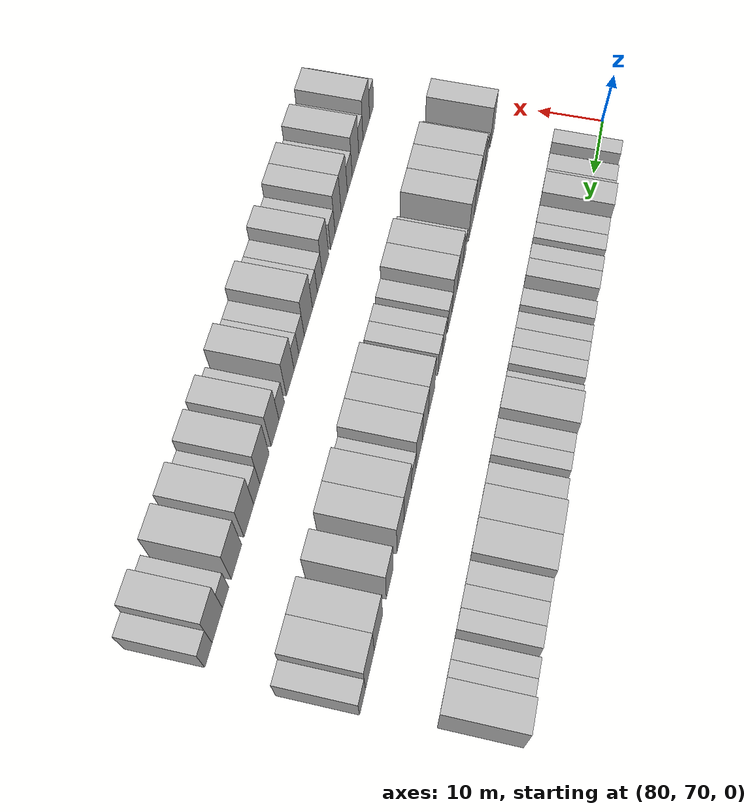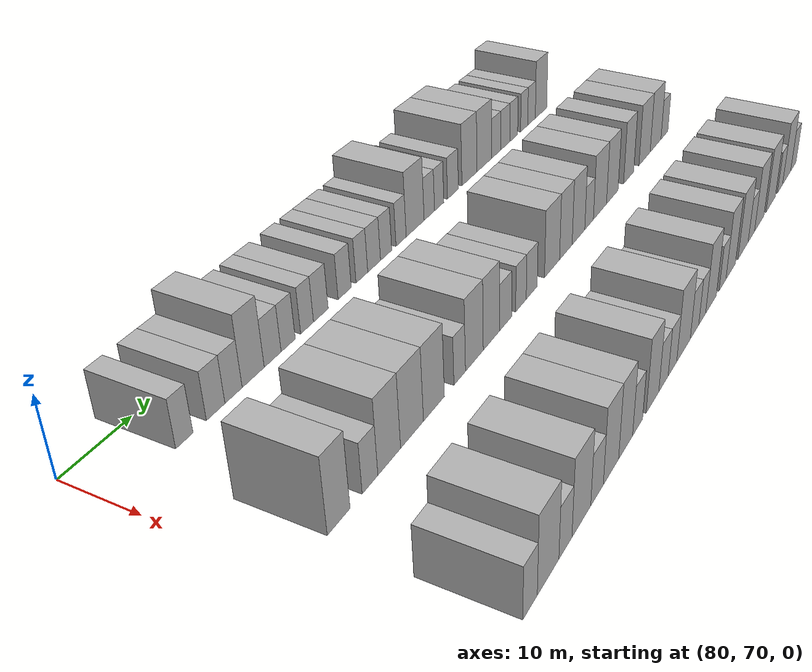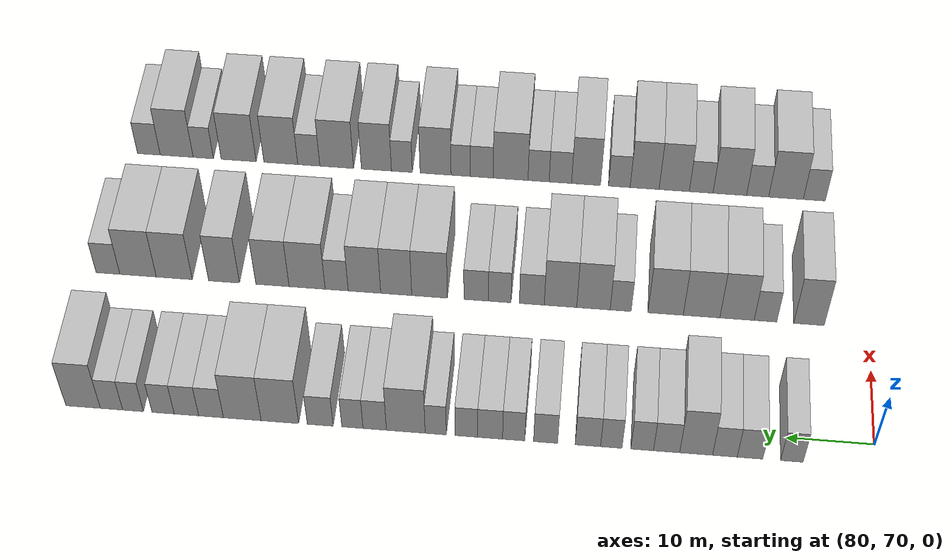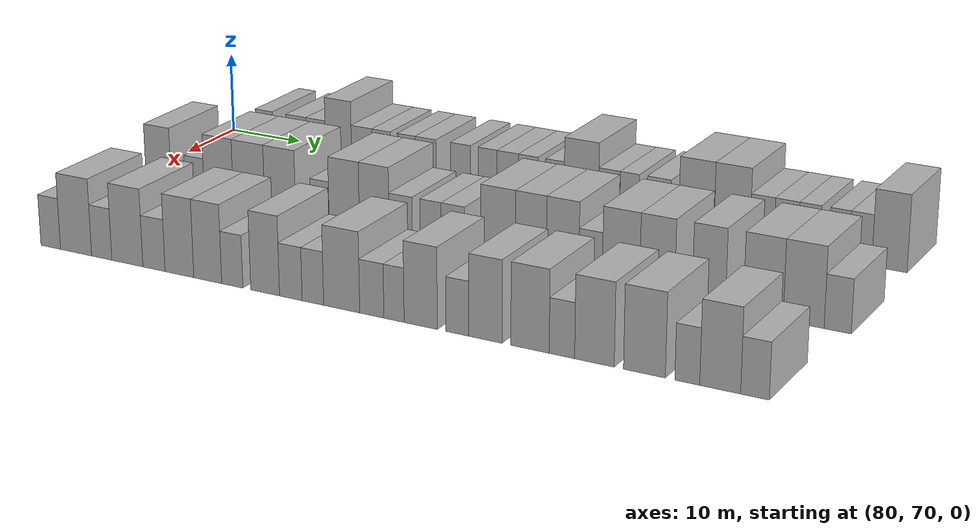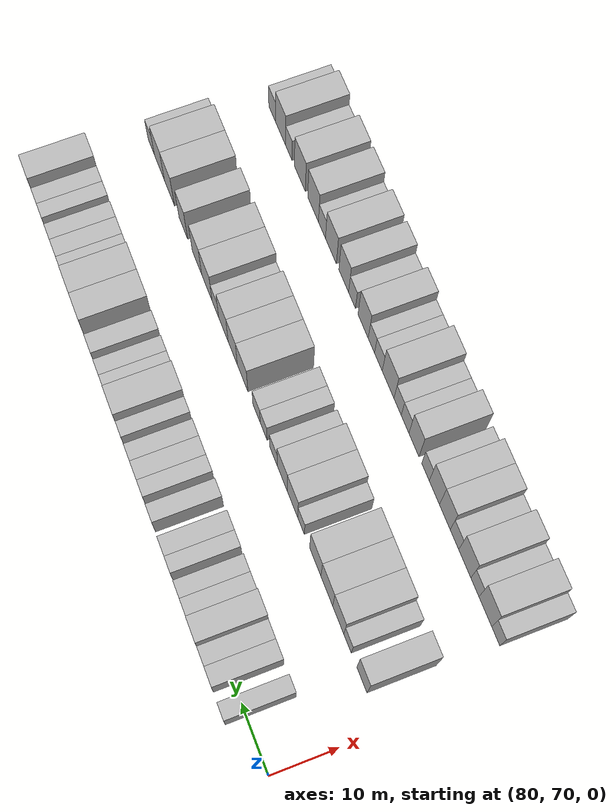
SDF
<sdf version="1.6">
 <world name="default">
  <model name="building_630">
   <static>1</static>
   <pose>82.0000 79.3968 0 0.000000 0.000000 0.000000</pose>
   <link name="link">
    <pose>0 0 3.00 0 0 0</pose>
    <collision name="collision"><geometry><box><size>10.0000 2.5306 6.0000</size></box></geometry></collision>
    <visual name="visual">
     <cast_shadows>0</cast_shadows>
     <geometry><box><size>10.0000 2.5306 6.0000</size></box></geometry>
     <material>
      <script>
       <uri>model://HANNAS_wall/materials/scripts</uri>
       <uri>model://HANNAS_wall/materials/textures</uri>
       <name>vrc/HANNAS_wall</name>
      </script>
     </material>
    </visual>
   </link>
  </model>
  <model name="building_631">
   <static>1</static>
   <pose>82.0000 84.1034 0 0.000000 0.000000 0.000000</pose>
   <link name="link">
    <pose>0 0 3.00 0 0 0</pose>
    <collision name="collision"><geometry><box><size>10.0000 2.8827 6.0000</size></box></geometry></collision>
    <visual name="visual">
     <cast_shadows>0</cast_shadows>
     <geometry><box><size>10.0000 2.8827 6.0000</size></box></geometry>
     <material>
      <script>
       <uri>model://HANNAS_wall/materials/scripts</uri>
       <uri>model://HANNAS_wall/materials/textures</uri>
       <name>vrc/HANNAS_wall</name>
      </script>
     </material>
    </visual>
   </link>
  </model>
  <model name="building_632">
   <static>1</static>
   <pose>82.0000 86.9345 0 0.000000 0.000000 0.000000</pose>
   <link name="link">
    <pose>0 0 3.00 0 0 0</pose>
    <collision name="collision"><geometry><box><size>10.0000 2.7796 6.0000</size></box></geometry></collision>
    <visual name="visual">
     <cast_shadows>0</cast_shadows>
     <geometry><box><size>10.0000 2.7796 6.0000</size></box></geometry>
     <material>
      <script>
       <uri>model://HANNAS_wall/materials/scripts</uri>
       <uri>model://HANNAS_wall/materials/textures</uri>
       <name>vrc/HANNAS_wall</name>
      </script>
     </material>
    </visual>
   </link>
  </model>
  <model name="building_633">
   <static>1</static>
   <pose>82.0000 90.1818 0 0.000000 0.000000 0.000000</pose>
   <link name="link">
    <pose>0 0 4.50 0 0 0</pose>
    <collision name="collision"><geometry><box><size>10.0000 3.7149 9.0000</size></box></geometry></collision>
    <visual name="visual">
     <cast_shadows>0</cast_shadows>
     <geometry><box><size>10.0000 3.7149 9.0000</size></box></geometry>
     <material>
      <script>
       <uri>model://HANNAS_wall/materials/scripts</uri>
       <uri>model://HANNAS_wall/materials/textures</uri>
       <name>vrc/HANNAS_wall</name>
      </script>
     </material>
    </visual>
   </link>
  </model>
  <model name="building_634">
   <static>1</static>
   <pose>82.0000 93.5199 0 0.000000 0.000000 0.000000</pose>
   <link name="link">
    <pose>0 0 3.00 0 0 0</pose>
    <collision name="collision"><geometry><box><size>10.0000 2.9614 6.0000</size></box></geometry></collision>
    <visual name="visual">
     <cast_shadows>0</cast_shadows>
     <geometry><box><size>10.0000 2.9614 6.0000</size></box></geometry>
     <material>
      <script>
       <uri>model://HANNAS_wall/materials/scripts</uri>
       <uri>model://HANNAS_wall/materials/textures</uri>
       <name>vrc/HANNAS_wall</name>
      </script>
     </material>
    </visual>
   </link>
  </model>
  <model name="building_635">
   <static>1</static>
   <pose>82.0000 96.2858 0 0.000000 0.000000 0.000000</pose>
   <link name="link">
    <pose>0 0 3.00 0 0 0</pose>
    <collision name="collision"><geometry><box><size>10.0000 2.5704 6.0000</size></box></geometry></collision>
    <visual name="visual">
     <cast_shadows>0</cast_shadows>
     <geometry><box><size>10.0000 2.5704 6.0000</size></box></geometry>
     <material>
      <script>
       <uri>model://HANNAS_wall/materials/scripts</uri>
       <uri>model://HANNAS_wall/materials/textures</uri>
       <name>vrc/HANNAS_wall</name>
      </script>
     </material>
    </visual>
   </link>
  </model>
  <model name="building_636">
   <static>1</static>
   <pose>82.0000 99.7910 0 0.000000 0.000000 0.000000</pose>
   <link name="link">
    <pose>0 0 3.00 0 0 0</pose>
    <collision name="collision"><geometry><box><size>10.0000 2.4400 6.0000</size></box></geometry></collision>
    <visual name="visual">
     <cast_shadows>0</cast_shadows>
     <geometry><box><size>10.0000 2.4400 6.0000</size></box></geometry>
     <material>
      <script>
       <uri>model://HANNAS_wall/materials/scripts</uri>
       <uri>model://HANNAS_wall/materials/textures</uri>
       <name>vrc/HANNAS_wall</name>
      </script>
     </material>
    </visual>
   </link>
  </model>
  <model name="building_637">
   <static>1</static>
   <pose>82.0000 102.4497 0 0.000000 0.000000 0.000000</pose>
   <link name="link">
    <pose>0 0 3.00 0 0 0</pose>
    <collision name="collision"><geometry><box><size>10.0000 2.8775 6.0000</size></box></geometry></collision>
    <visual name="visual">
     <cast_shadows>0</cast_shadows>
     <geometry><box><size>10.0000 2.8775 6.0000</size></box></geometry>
     <material>
      <script>
       <uri>model://HANNAS_wall/materials/scripts</uri>
       <uri>model://HANNAS_wall/materials/textures</uri>
       <name>vrc/HANNAS_wall</name>
      </script>
     </material>
    </visual>
   </link>
  </model>
  <model name="building_638">
   <static>1</static>
   <pose>82.0000 107.2564 0 0.000000 0.000000 0.000000</pose>
   <link name="link">
    <pose>0 0 3.00 0 0 0</pose>
    <collision name="collision"><geometry><box><size>10.0000 2.7361 6.0000</size></box></geometry></collision>
    <visual name="visual">
     <cast_shadows>0</cast_shadows>
     <geometry><box><size>10.0000 2.7361 6.0000</size></box></geometry>
     <material>
      <script>
       <uri>model://HANNAS_wall/materials/scripts</uri>
       <uri>model://HANNAS_wall/materials/textures</uri>
       <name>vrc/HANNAS_wall</name>
      </script>
     </material>
    </visual>
   </link>
  </model>
  <model name="building_639">
   <static>1</static>
   <pose>82.0000 110.8932 0 0.000000 0.000000 0.000000</pose>
   <link name="link">
    <pose>0 0 3.00 0 0 0</pose>
    <collision name="collision"><geometry><box><size>10.0000 2.5376 6.0000</size></box></geometry></collision>
    <visual name="visual">
     <cast_shadows>0</cast_shadows>
     <geometry><box><size>10.0000 2.5376 6.0000</size></box></geometry>
     <material>
      <script>
       <uri>model://HANNAS_wall/materials/scripts</uri>
       <uri>model://HANNAS_wall/materials/textures</uri>
       <name>vrc/HANNAS_wall</name>
      </script>
     </material>
    </visual>
   </link>
  </model>
  <model name="building_640">
   <static>1</static>
   <pose>82.0000 113.5886 0 0.000000 0.000000 0.000000</pose>
   <link name="link">
    <pose>0 0 3.00 0 0 0</pose>
    <collision name="collision"><geometry><box><size>10.0000 2.8531 6.0000</size></box></geometry></collision>
    <visual name="visual">
     <cast_shadows>0</cast_shadows>
     <geometry><box><size>10.0000 2.8531 6.0000</size></box></geometry>
     <material>
      <script>
       <uri>model://HANNAS_wall/materials/scripts</uri>
       <uri>model://HANNAS_wall/materials/textures</uri>
       <name>vrc/HANNAS_wall</name>
      </script>
     </material>
    </visual>
   </link>
  </model>
  <model name="building_641">
   <static>1</static>
   <pose>82.0000 116.3040 0 0.000000 0.000000 0.000000</pose>
   <link name="link">
    <pose>0 0 3.00 0 0 0</pose>
    <collision name="collision"><geometry><box><size>10.0000 2.5777 6.0000</size></box></geometry></collision>
    <visual name="visual">
     <cast_shadows>0</cast_shadows>
     <geometry><box><size>10.0000 2.5777 6.0000</size></box></geometry>
     <material>
      <script>
       <uri>model://HANNAS_wall/materials/scripts</uri>
       <uri>model://HANNAS_wall/materials/textures</uri>
       <name>vrc/HANNAS_wall</name>
      </script>
     </material>
    </visual>
   </link>
  </model>
  <model name="building_642">
   <static>1</static>
   <pose>82.0000 119.8088 0 0.000000 0.000000 0.000000</pose>
   <link name="link">
    <pose>0 0 3.00 0 0 0</pose>
    <collision name="collision"><geometry><box><size>10.0000 2.4319 6.0000</size></box></geometry></collision>
    <visual name="visual">
     <cast_shadows>0</cast_shadows>
     <geometry><box><size>10.0000 2.4319 6.0000</size></box></geometry>
     <material>
      <script>
       <uri>model://HANNAS_wall/materials/scripts</uri>
       <uri>model://HANNAS_wall/materials/textures</uri>
       <name>vrc/HANNAS_wall</name>
      </script>
     </material>
    </visual>
   </link>
  </model>
  <model name="building_643">
   <static>1</static>
   <pose>82.0000 123.2488 0 0.000000 0.000000 0.000000</pose>
   <link name="link">
    <pose>0 0 4.50 0 0 0</pose>
    <collision name="collision"><geometry><box><size>10.0000 4.4482 9.0000</size></box></geometry></collision>
    <visual name="visual">
     <cast_shadows>0</cast_shadows>
     <geometry><box><size>10.0000 4.4482 9.0000</size></box></geometry>
     <material>
      <script>
       <uri>model://HANNAS_wall/materials/scripts</uri>
       <uri>model://HANNAS_wall/materials/textures</uri>
       <name>vrc/HANNAS_wall</name>
      </script>
     </material>
    </visual>
   </link>
  </model>
  <model name="building_644">
   <static>1</static>
   <pose>82.0000 126.8173 0 0.000000 0.000000 0.000000</pose>
   <link name="link">
    <pose>0 0 3.00 0 0 0</pose>
    <collision name="collision"><geometry><box><size>10.0000 2.6888 6.0000</size></box></geometry></collision>
    <visual name="visual">
     <cast_shadows>0</cast_shadows>
     <geometry><box><size>10.0000 2.6888 6.0000</size></box></geometry>
     <material>
      <script>
       <uri>model://HANNAS_wall/materials/scripts</uri>
       <uri>model://HANNAS_wall/materials/textures</uri>
       <name>vrc/HANNAS_wall</name>
      </script>
     </material>
    </visual>
   </link>
  </model>
  <model name="building_645">
   <static>1</static>
   <pose>82.0000 129.3812 0 0.000000 0.000000 0.000000</pose>
   <link name="link">
    <pose>0 0 3.00 0 0 0</pose>
    <collision name="collision"><geometry><box><size>10.0000 2.4391 6.0000</size></box></geometry></collision>
    <visual name="visual">
     <cast_shadows>0</cast_shadows>
     <geometry><box><size>10.0000 2.4391 6.0000</size></box></geometry>
     <material>
      <script>
       <uri>model://HANNAS_wall/materials/scripts</uri>
       <uri>model://HANNAS_wall/materials/textures</uri>
       <name>vrc/HANNAS_wall</name>
      </script>
     </material>
    </visual>
   </link>
  </model>
  <model name="building_646">
   <static>1</static>
   <pose>82.0000 133.0914 0 0.000000 0.000000 0.000000</pose>
   <link name="link">
    <pose>0 0 3.00 0 0 0</pose>
    <collision name="collision"><geometry><box><size>10.0000 2.9813 6.0000</size></box></geometry></collision>
    <visual name="visual">
     <cast_shadows>0</cast_shadows>
     <geometry><box><size>10.0000 2.9813 6.0000</size></box></geometry>
     <material>
      <script>
       <uri>model://HANNAS_wall/materials/scripts</uri>
       <uri>model://HANNAS_wall/materials/textures</uri>
       <name>vrc/HANNAS_wall</name>
      </script>
     </material>
    </visual>
   </link>
  </model>
  <model name="building_647">
   <static>1</static>
   <pose>82.0000 137.7548 0 0.000000 0.000000 0.000000</pose>
   <link name="link">
    <pose>0 0 4.50 0 0 0</pose>
    <collision name="collision"><geometry><box><size>10.0000 4.3455 9.0000</size></box></geometry></collision>
    <visual name="visual">
     <cast_shadows>0</cast_shadows>
     <geometry><box><size>10.0000 4.3455 9.0000</size></box></geometry>
     <material>
      <script>
       <uri>model://HANNAS_wall/materials/scripts</uri>
       <uri>model://HANNAS_wall/materials/textures</uri>
       <name>vrc/HANNAS_wall</name>
      </script>
     </material>
    </visual>
   </link>
  </model>
  <model name="building_648">
   <static>1</static>
   <pose>82.0000 142.1123 0 0.000000 0.000000 0.000000</pose>
   <link name="link">
    <pose>0 0 4.50 0 0 0</pose>
    <collision name="collision"><geometry><box><size>10.0000 4.3694 9.0000</size></box></geometry></collision>
    <visual name="visual">
     <cast_shadows>0</cast_shadows>
     <geometry><box><size>10.0000 4.3694 9.0000</size></box></geometry>
     <material>
      <script>
       <uri>model://HANNAS_wall/materials/scripts</uri>
       <uri>model://HANNAS_wall/materials/textures</uri>
       <name>vrc/HANNAS_wall</name>
      </script>
     </material>
    </visual>
   </link>
  </model>
  <model name="building_649">
   <static>1</static>
   <pose>82.0000 145.7367 0 0.000000 0.000000 0.000000</pose>
   <link name="link">
    <pose>0 0 3.00 0 0 0</pose>
    <collision name="collision"><geometry><box><size>10.0000 2.8795 6.0000</size></box></geometry></collision>
    <visual name="visual">
     <cast_shadows>0</cast_shadows>
     <geometry><box><size>10.0000 2.8795 6.0000</size></box></geometry>
     <material>
      <script>
       <uri>model://HANNAS_wall/materials/scripts</uri>
       <uri>model://HANNAS_wall/materials/textures</uri>
       <name>vrc/HANNAS_wall</name>
      </script>
     </material>
    </visual>
   </link>
  </model>
  <model name="building_650">
   <static>1</static>
   <pose>82.0000 148.6009 0 0.000000 0.000000 0.000000</pose>
   <link name="link">
    <pose>0 0 3.00 0 0 0</pose>
    <collision name="collision"><geometry><box><size>10.0000 2.8488 6.0000</size></box></geometry></collision>
    <visual name="visual">
     <cast_shadows>0</cast_shadows>
     <geometry><box><size>10.0000 2.8488 6.0000</size></box></geometry>
     <material>
      <script>
       <uri>model://HANNAS_wall/materials/scripts</uri>
       <uri>model://HANNAS_wall/materials/textures</uri>
       <name>vrc/HANNAS_wall</name>
      </script>
     </material>
    </visual>
   </link>
  </model>
  <model name="building_651">
   <static>1</static>
   <pose>82.0000 151.3153 0 0.000000 0.000000 0.000000</pose>
   <link name="link">
    <pose>0 0 3.00 0 0 0</pose>
    <collision name="collision"><geometry><box><size>10.0000 2.5799 6.0000</size></box></geometry></collision>
    <visual name="visual">
     <cast_shadows>0</cast_shadows>
     <geometry><box><size>10.0000 2.5799 6.0000</size></box></geometry>
     <material>
      <script>
       <uri>model://HANNAS_wall/materials/scripts</uri>
       <uri>model://HANNAS_wall/materials/textures</uri>
       <name>vrc/HANNAS_wall</name>
      </script>
     </material>
    </visual>
   </link>
  </model>
  <model name="building_652">
   <static>1</static>
   <pose>82.0000 154.8153 0 0.000000 0.000000 0.000000</pose>
   <link name="link">
    <pose>0 0 3.00 0 0 0</pose>
    <collision name="collision"><geometry><box><size>10.0000 2.4201 6.0000</size></box></geometry></collision>
    <visual name="visual">
     <cast_shadows>0</cast_shadows>
     <geometry><box><size>10.0000 2.4201 6.0000</size></box></geometry>
     <material>
      <script>
       <uri>model://HANNAS_wall/materials/scripts</uri>
       <uri>model://HANNAS_wall/materials/textures</uri>
       <name>vrc/HANNAS_wall</name>
      </script>
     </material>
    </visual>
   </link>
  </model>
  <model name="building_653">
   <static>1</static>
   <pose>82.0000 157.3307 0 0.000000 0.000000 0.000000</pose>
   <link name="link">
    <pose>0 0 3.00 0 0 0</pose>
    <collision name="collision"><geometry><box><size>10.0000 2.6108 6.0000</size></box></geometry></collision>
    <visual name="visual">
     <cast_shadows>0</cast_shadows>
     <geometry><box><size>10.0000 2.6108 6.0000</size></box></geometry>
     <material>
      <script>
       <uri>model://HANNAS_wall/materials/scripts</uri>
       <uri>model://HANNAS_wall/materials/textures</uri>
       <name>vrc/HANNAS_wall</name>
      </script>
     </material>
    </visual>
   </link>
  </model>
  <model name="building_654">
   <static>1</static>
   <pose>82.0000 160.6524 0 0.000000 0.000000 0.000000</pose>
   <link name="link">
    <pose>0 0 4.50 0 0 0</pose>
    <collision name="collision"><geometry><box><size>10.0000 4.0326 9.0000</size></box></geometry></collision>
    <visual name="visual">
     <cast_shadows>0</cast_shadows>
     <geometry><box><size>10.0000 4.0326 9.0000</size></box></geometry>
     <material>
      <script>
       <uri>model://HANNAS_wall/materials/scripts</uri>
       <uri>model://HANNAS_wall/materials/textures</uri>
       <name>vrc/HANNAS_wall</name>
      </script>
     </material>
    </visual>
   </link>
  </model>
  <model name="building_802">
   <static>1</static>
   <pose>101.0000 77.0672 0 0.000000 0.000000 0.000000</pose>
   <link name="link">
    <pose>0 0 4.50 0 0 0</pose>
    <collision name="collision"><geometry><box><size>10.0000 3.6210 9.0000</size></box></geometry></collision>
    <visual name="visual">
     <cast_shadows>0</cast_shadows>
     <geometry><box><size>10.0000 3.6210 9.0000</size></box></geometry>
     <material>
      <script>
       <uri>model://HANNAS_wall/materials/scripts</uri>
       <uri>model://HANNAS_wall/materials/textures</uri>
       <name>vrc/HANNAS_wall</name>
      </script>
     </material>
    </visual>
   </link>
  </model>
  <model name="building_803">
   <static>1</static>
   <pose>101.0000 82.2175 0 0.000000 0.000000 0.000000</pose>
   <link name="link">
    <pose>0 0 3.00 0 0 0</pose>
    <collision name="collision"><geometry><box><size>10.0000 2.6798 6.0000</size></box></geometry></collision>
    <visual name="visual">
     <cast_shadows>0</cast_shadows>
     <geometry><box><size>10.0000 2.6798 6.0000</size></box></geometry>
     <material>
      <script>
       <uri>model://HANNAS_wall/materials/scripts</uri>
       <uri>model://HANNAS_wall/materials/textures</uri>
       <name>vrc/HANNAS_wall</name>
      </script>
     </material>
    </visual>
   </link>
  </model>
  <model name="building_804">
   <static>1</static>
   <pose>101.0000 85.5962 0 0.000000 0.000000 0.000000</pose>
   <link name="link">
    <pose>0 0 4.50 0 0 0</pose>
    <collision name="collision"><geometry><box><size>10.0000 4.0775 9.0000</size></box></geometry></collision>
    <visual name="visual">
     <cast_shadows>0</cast_shadows>
     <geometry><box><size>10.0000 4.0775 9.0000</size></box></geometry>
     <material>
      <script>
       <uri>model://HANNAS_wall/materials/scripts</uri>
       <uri>model://HANNAS_wall/materials/textures</uri>
       <name>vrc/HANNAS_wall</name>
      </script>
     </material>
    </visual>
   </link>
  </model>
  <model name="building_805">
   <static>1</static>
   <pose>101.0000 89.8144 0 0.000000 0.000000 0.000000</pose>
   <link name="link">
    <pose>0 0 4.50 0 0 0</pose>
    <collision name="collision"><geometry><box><size>10.0000 4.3589 9.0000</size></box></geometry></collision>
    <visual name="visual">
     <cast_shadows>0</cast_shadows>
     <geometry><box><size>10.0000 4.3589 9.0000</size></box></geometry>
     <material>
      <script>
       <uri>model://HANNAS_wall/materials/scripts</uri>
       <uri>model://HANNAS_wall/materials/textures</uri>
       <name>vrc/HANNAS_wall</name>
      </script>
     </material>
    </visual>
   </link>
  </model>
  <model name="building_806">
   <static>1</static>
   <pose>101.0000 94.1086 0 0.000000 0.000000 0.000000</pose>
   <link name="link">
    <pose>0 0 4.50 0 0 0</pose>
    <collision name="collision"><geometry><box><size>10.0000 4.2296 9.0000</size></box></geometry></collision>
    <visual name="visual">
     <cast_shadows>0</cast_shadows>
     <geometry><box><size>10.0000 4.2296 9.0000</size></box></geometry>
     <material>
      <script>
       <uri>model://HANNAS_wall/materials/scripts</uri>
       <uri>model://HANNAS_wall/materials/textures</uri>
       <name>vrc/HANNAS_wall</name>
      </script>
     </material>
    </visual>
   </link>
  </model>
  <model name="building_807">
   <static>1</static>
   <pose>101.0000 99.4759 0 0.000000 0.000000 0.000000</pose>
   <link name="link">
    <pose>0 0 3.00 0 0 0</pose>
    <collision name="collision"><geometry><box><size>10.0000 2.5050 6.0000</size></box></geometry></collision>
    <visual name="visual">
     <cast_shadows>0</cast_shadows>
     <geometry><box><size>10.0000 2.5050 6.0000</size></box></geometry>
     <material>
      <script>
       <uri>model://HANNAS_wall/materials/scripts</uri>
       <uri>model://HANNAS_wall/materials/textures</uri>
       <name>vrc/HANNAS_wall</name>
      </script>
     </material>
    </visual>
   </link>
  </model>
  <model name="building_808">
   <static>1</static>
   <pose>101.0000 102.7372 0 0.000000 0.000000 0.000000</pose>
   <link name="link">
    <pose>0 0 4.50 0 0 0</pose>
    <collision name="collision"><geometry><box><size>10.0000 4.0176 9.0000</size></box></geometry></collision>
    <visual name="visual">
     <cast_shadows>0</cast_shadows>
     <geometry><box><size>10.0000 4.0176 9.0000</size></box></geometry>
     <material>
      <script>
       <uri>model://HANNAS_wall/materials/scripts</uri>
       <uri>model://HANNAS_wall/materials/textures</uri>
       <name>vrc/HANNAS_wall</name>
      </script>
     </material>
    </visual>
   </link>
  </model>
  <model name="building_809">
   <static>1</static>
   <pose>101.0000 106.6956 0 0.000000 0.000000 0.000000</pose>
   <link name="link">
    <pose>0 0 4.50 0 0 0</pose>
    <collision name="collision"><geometry><box><size>10.0000 3.8991 9.0000</size></box></geometry></collision>
    <visual name="visual">
     <cast_shadows>0</cast_shadows>
     <geometry><box><size>10.0000 3.8991 9.0000</size></box></geometry>
     <material>
      <script>
       <uri>model://HANNAS_wall/materials/scripts</uri>
       <uri>model://HANNAS_wall/materials/textures</uri>
       <name>vrc/HANNAS_wall</name>
      </script>
     </material>
    </visual>
   </link>
  </model>
  <model name="building_810">
   <static>1</static>
   <pose>101.0000 110.1404 0 0.000000 0.000000 0.000000</pose>
   <link name="link">
    <pose>0 0 3.00 0 0 0</pose>
    <collision name="collision"><geometry><box><size>10.0000 2.9905 6.0000</size></box></geometry></collision>
    <visual name="visual">
     <cast_shadows>0</cast_shadows>
     <geometry><box><size>10.0000 2.9905 6.0000</size></box></geometry>
     <material>
      <script>
       <uri>model://HANNAS_wall/materials/scripts</uri>
       <uri>model://HANNAS_wall/materials/textures</uri>
       <name>vrc/HANNAS_wall</name>
      </script>
     </material>
    </visual>
   </link>
  </model>
  <model name="building_811">
   <static>1</static>
   <pose>101.0000 113.9992 0 0.000000 0.000000 0.000000</pose>
   <link name="link">
    <pose>0 0 3.00 0 0 0</pose>
    <collision name="collision"><geometry><box><size>10.0000 2.7270 6.0000</size></box></geometry></collision>
    <visual name="visual">
     <cast_shadows>0</cast_shadows>
     <geometry><box><size>10.0000 2.7270 6.0000</size></box></geometry>
     <material>
      <script>
       <uri>model://HANNAS_wall/materials/scripts</uri>
       <uri>model://HANNAS_wall/materials/textures</uri>
       <name>vrc/HANNAS_wall</name>
      </script>
     </material>
    </visual>
   </link>
  </model>
  <model name="building_812">
   <static>1</static>
   <pose>101.0000 116.8418 0 0.000000 0.000000 0.000000</pose>
   <link name="link">
    <pose>0 0 3.00 0 0 0</pose>
    <collision name="collision"><geometry><box><size>10.0000 2.9583 6.0000</size></box></geometry></collision>
    <visual name="visual">
     <cast_shadows>0</cast_shadows>
     <geometry><box><size>10.0000 2.9583 6.0000</size></box></geometry>
     <material>
      <script>
       <uri>model://HANNAS_wall/materials/scripts</uri>
       <uri>model://HANNAS_wall/materials/textures</uri>
       <name>vrc/HANNAS_wall</name>
      </script>
     </material>
    </visual>
   </link>
  </model>
  <model name="building_813">
   <static>1</static>
   <pose>101.0000 122.4758 0 0.000000 0.000000 0.000000</pose>
   <link name="link">
    <pose>0 0 4.50 0 0 0</pose>
    <collision name="collision"><geometry><box><size>10.0000 4.3097 9.0000</size></box></geometry></collision>
    <visual name="visual">
     <cast_shadows>0</cast_shadows>
     <geometry><box><size>10.0000 4.3097 9.0000</size></box></geometry>
     <material>
      <script>
       <uri>model://HANNAS_wall/materials/scripts</uri>
       <uri>model://HANNAS_wall/materials/textures</uri>
       <name>vrc/HANNAS_wall</name>
      </script>
     </material>
    </visual>
   </link>
  </model>
  <model name="building_814">
   <static>1</static>
   <pose>101.0000 126.5129 0 0.000000 0.000000 0.000000</pose>
   <link name="link">
    <pose>0 0 4.50 0 0 0</pose>
    <collision name="collision"><geometry><box><size>10.0000 3.7645 9.0000</size></box></geometry></collision>
    <visual name="visual">
     <cast_shadows>0</cast_shadows>
     <geometry><box><size>10.0000 3.7645 9.0000</size></box></geometry>
     <material>
      <script>
       <uri>model://HANNAS_wall/materials/scripts</uri>
       <uri>model://HANNAS_wall/materials/textures</uri>
       <name>vrc/HANNAS_wall</name>
      </script>
     </material>
    </visual>
   </link>
  </model>
  <model name="building_815">
   <static>1</static>
   <pose>101.0000 130.3658 0 0.000000 0.000000 0.000000</pose>
   <link name="link">
    <pose>0 0 4.50 0 0 0</pose>
    <collision name="collision"><geometry><box><size>10.0000 3.9412 9.0000</size></box></geometry></collision>
    <visual name="visual">
     <cast_shadows>0</cast_shadows>
     <geometry><box><size>10.0000 3.9412 9.0000</size></box></geometry>
     <material>
      <script>
       <uri>model://HANNAS_wall/materials/scripts</uri>
       <uri>model://HANNAS_wall/materials/textures</uri>
       <name>vrc/HANNAS_wall</name>
      </script>
     </material>
    </visual>
   </link>
  </model>
  <model name="building_816">
   <static>1</static>
   <pose>101.0000 133.7358 0 0.000000 0.000000 0.000000</pose>
   <link name="link">
    <pose>0 0 3.00 0 0 0</pose>
    <collision name="collision"><geometry><box><size>10.0000 2.7989 6.0000</size></box></geometry></collision>
    <visual name="visual">
     <cast_shadows>0</cast_shadows>
     <geometry><box><size>10.0000 2.7989 6.0000</size></box></geometry>
     <material>
      <script>
       <uri>model://HANNAS_wall/materials/scripts</uri>
       <uri>model://HANNAS_wall/materials/textures</uri>
       <name>vrc/HANNAS_wall</name>
      </script>
     </material>
    </visual>
   </link>
  </model>
  <model name="building_817">
   <static>1</static>
   <pose>101.0000 137.3330 0 0.000000 0.000000 0.000000</pose>
   <link name="link">
    <pose>0 0 4.50 0 0 0</pose>
    <collision name="collision"><geometry><box><size>10.0000 4.3954 9.0000</size></box></geometry></collision>
    <visual name="visual">
     <cast_shadows>0</cast_shadows>
     <geometry><box><size>10.0000 4.3954 9.0000</size></box></geometry>
     <material>
      <script>
       <uri>model://HANNAS_wall/materials/scripts</uri>
       <uri>model://HANNAS_wall/materials/textures</uri>
       <name>vrc/HANNAS_wall</name>
      </script>
     </material>
    </visual>
   </link>
  </model>
  <model name="building_818">
   <static>1</static>
   <pose>101.0000 141.5638 0 0.000000 0.000000 0.000000</pose>
   <link name="link">
    <pose>0 0 4.50 0 0 0</pose>
    <collision name="collision"><geometry><box><size>10.0000 4.0663 9.0000</size></box></geometry></collision>
    <visual name="visual">
     <cast_shadows>0</cast_shadows>
     <geometry><box><size>10.0000 4.0663 9.0000</size></box></geometry>
     <material>
      <script>
       <uri>model://HANNAS_wall/materials/scripts</uri>
       <uri>model://HANNAS_wall/materials/textures</uri>
       <name>vrc/HANNAS_wall</name>
      </script>
     </material>
    </visual>
   </link>
  </model>
  <model name="building_819">
   <static>1</static>
   <pose>101.0000 147.4891 0 0.000000 0.000000 0.000000</pose>
   <link name="link">
    <pose>0 0 4.50 0 0 0</pose>
    <collision name="collision"><geometry><box><size>10.0000 3.7843 9.0000</size></box></geometry></collision>
    <visual name="visual">
     <cast_shadows>0</cast_shadows>
     <geometry><box><size>10.0000 3.7843 9.0000</size></box></geometry>
     <material>
      <script>
       <uri>model://HANNAS_wall/materials/scripts</uri>
       <uri>model://HANNAS_wall/materials/textures</uri>
       <name>vrc/HANNAS_wall</name>
      </script>
     </material>
    </visual>
   </link>
  </model>
  <model name="building_820">
   <static>1</static>
   <pose>101.0000 153.5932 0 0.000000 0.000000 0.000000</pose>
   <link name="link">
    <pose>0 0 4.50 0 0 0</pose>
    <collision name="collision"><geometry><box><size>10.0000 4.4238 9.0000</size></box></geometry></collision>
    <visual name="visual">
     <cast_shadows>0</cast_shadows>
     <geometry><box><size>10.0000 4.4238 9.0000</size></box></geometry>
     <material>
      <script>
       <uri>model://HANNAS_wall/materials/scripts</uri>
       <uri>model://HANNAS_wall/materials/textures</uri>
       <name>vrc/HANNAS_wall</name>
      </script>
     </material>
    </visual>
   </link>
  </model>
  <model name="building_821">
   <static>1</static>
   <pose>101.0000 158.0451 0 0.000000 0.000000 0.000000</pose>
   <link name="link">
    <pose>0 0 4.50 0 0 0</pose>
    <collision name="collision"><geometry><box><size>10.0000 4.4801 9.0000</size></box></geometry></collision>
    <visual name="visual">
     <cast_shadows>0</cast_shadows>
     <geometry><box><size>10.0000 4.4801 9.0000</size></box></geometry>
     <material>
      <script>
       <uri>model://HANNAS_wall/materials/scripts</uri>
       <uri>model://HANNAS_wall/materials/textures</uri>
       <name>vrc/HANNAS_wall</name>
      </script>
     </material>
    </visual>
   </link>
  </model>
  <model name="building_822">
   <static>1</static>
   <pose>101.0000 161.7510 0 0.000000 0.000000 0.000000</pose>
   <link name="link">
    <pose>0 0 3.00 0 0 0</pose>
    <collision name="collision"><geometry><box><size>10.0000 2.9317 6.0000</size></box></geometry></collision>
    <visual name="visual">
     <cast_shadows>0</cast_shadows>
     <geometry><box><size>10.0000 2.9317 6.0000</size></box></geometry>
     <material>
      <script>
       <uri>model://HANNAS_wall/materials/scripts</uri>
       <uri>model://HANNAS_wall/materials/textures</uri>
       <name>vrc/HANNAS_wall</name>
      </script>
     </material>
    </visual>
   </link>
  </model>
  <model name="building_980">
   <static>1</static>
   <pose>120.0000 75.9798 0 0.000000 0.000000 0.000000</pose>
   <link name="link">
    <pose>0 0 3.00 0 0 0</pose>
    <collision name="collision"><geometry><box><size>10.0000 2.7419 6.0000</size></box></geometry></collision>
    <visual name="visual">
     <cast_shadows>0</cast_shadows>
     <geometry><box><size>10.0000 2.7419 6.0000</size></box></geometry>
     <material>
      <script>
       <uri>model://HANNAS_wall/materials/scripts</uri>
       <uri>model://HANNAS_wall/materials/textures</uri>
       <name>vrc/HANNAS_wall</name>
      </script>
     </material>
    </visual>
   </link>
  </model>
  <model name="building_981">
   <static>1</static>
   <pose>120.0000 79.5094 0 0.000000 0.000000 0.000000</pose>
   <link name="link">
    <pose>0 0 4.50 0 0 0</pose>
    <collision name="collision"><geometry><box><size>10.0000 4.3174 9.0000</size></box></geometry></collision>
    <visual name="visual">
     <cast_shadows>0</cast_shadows>
     <geometry><box><size>10.0000 4.3174 9.0000</size></box></geometry>
     <material>
      <script>
       <uri>model://HANNAS_wall/materials/scripts</uri>
       <uri>model://HANNAS_wall/materials/textures</uri>
       <name>vrc/HANNAS_wall</name>
      </script>
     </material>
    </visual>
   </link>
  </model>
  <model name="building_982">
   <static>1</static>
   <pose>120.0000 83.0531 0 0.000000 0.000000 0.000000</pose>
   <link name="link">
    <pose>0 0 3.00 0 0 0</pose>
    <collision name="collision"><geometry><box><size>10.0000 2.7700 6.0000</size></box></geometry></collision>
    <visual name="visual">
     <cast_shadows>0</cast_shadows>
     <geometry><box><size>10.0000 2.7700 6.0000</size></box></geometry>
     <material>
      <script>
       <uri>model://HANNAS_wall/materials/scripts</uri>
       <uri>model://HANNAS_wall/materials/textures</uri>
       <name>vrc/HANNAS_wall</name>
      </script>
     </material>
    </visual>
   </link>
  </model>
  <model name="building_983">
   <static>1</static>
   <pose>120.0000 86.5377 0 0.000000 0.000000 0.000000</pose>
   <link name="link">
    <pose>0 0 4.50 0 0 0</pose>
    <collision name="collision"><geometry><box><size>10.0000 4.1992 9.0000</size></box></geometry></collision>
    <visual name="visual">
     <cast_shadows>0</cast_shadows>
     <geometry><box><size>10.0000 4.1992 9.0000</size></box></geometry>
     <material>
      <script>
       <uri>model://HANNAS_wall/materials/scripts</uri>
       <uri>model://HANNAS_wall/materials/textures</uri>
       <name>vrc/HANNAS_wall</name>
      </script>
     </material>
    </visual>
   </link>
  </model>
  <model name="building_984">
   <static>1</static>
   <pose>120.0000 90.1219 0 0.000000 0.000000 0.000000</pose>
   <link name="link">
    <pose>0 0 3.00 0 0 0</pose>
    <collision name="collision"><geometry><box><size>10.0000 2.9691 6.0000</size></box></geometry></collision>
    <visual name="visual">
     <cast_shadows>0</cast_shadows>
     <geometry><box><size>10.0000 2.9691 6.0000</size></box></geometry>
     <material>
      <script>
       <uri>model://HANNAS_wall/materials/scripts</uri>
       <uri>model://HANNAS_wall/materials/textures</uri>
       <name>vrc/HANNAS_wall</name>
      </script>
     </material>
    </visual>
   </link>
  </model>
  <model name="building_985">
   <static>1</static>
   <pose>120.0000 93.5033 0 0.000000 0.000000 0.000000</pose>
   <link name="link">
    <pose>0 0 4.50 0 0 0</pose>
    <collision name="collision"><geometry><box><size>10.0000 3.7938 9.0000</size></box></geometry></collision>
    <visual name="visual">
     <cast_shadows>0</cast_shadows>
     <geometry><box><size>10.0000 3.7938 9.0000</size></box></geometry>
     <material>
      <script>
       <uri>model://HANNAS_wall/materials/scripts</uri>
       <uri>model://HANNAS_wall/materials/textures</uri>
       <name>vrc/HANNAS_wall</name>
      </script>
     </material>
    </visual>
   </link>
  </model>
  <model name="building_986">
   <static>1</static>
   <pose>120.0000 97.2198 0 0.000000 0.000000 0.000000</pose>
   <link name="link">
    <pose>0 0 4.50 0 0 0</pose>
    <collision name="collision"><geometry><box><size>10.0000 3.6392 9.0000</size></box></geometry></collision>
    <visual name="visual">
     <cast_shadows>0</cast_shadows>
     <geometry><box><size>10.0000 3.6392 9.0000</size></box></geometry>
     <material>
      <script>
       <uri>model://HANNAS_wall/materials/scripts</uri>
       <uri>model://HANNAS_wall/materials/textures</uri>
       <name>vrc/HANNAS_wall</name>
      </script>
     </material>
    </visual>
   </link>
  </model>
  <model name="building_987">
   <static>1</static>
   <pose>120.0000 100.4044 0 0.000000 0.000000 0.000000</pose>
   <link name="link">
    <pose>0 0 3.00 0 0 0</pose>
    <collision name="collision"><geometry><box><size>10.0000 2.7301 6.0000</size></box></geometry></collision>
    <visual name="visual">
     <cast_shadows>0</cast_shadows>
     <geometry><box><size>10.0000 2.7301 6.0000</size></box></geometry>
     <material>
      <script>
       <uri>model://HANNAS_wall/materials/scripts</uri>
       <uri>model://HANNAS_wall/materials/textures</uri>
       <name>vrc/HANNAS_wall</name>
      </script>
     </material>
    </visual>
   </link>
  </model>
  <model name="building_988">
   <static>1</static>
   <pose>120.0000 104.5965 0 0.000000 0.000000 0.000000</pose>
   <link name="link">
    <pose>0 0 4.50 0 0 0</pose>
    <collision name="collision"><geometry><box><size>10.0000 3.6540 9.0000</size></box></geometry></collision>
    <visual name="visual">
     <cast_shadows>0</cast_shadows>
     <geometry><box><size>10.0000 3.6540 9.0000</size></box></geometry>
     <material>
      <script>
       <uri>model://HANNAS_wall/materials/scripts</uri>
       <uri>model://HANNAS_wall/materials/textures</uri>
       <name>vrc/HANNAS_wall</name>
      </script>
     </material>
    </visual>
   </link>
  </model>
  <model name="building_989">
   <static>1</static>
   <pose>120.0000 107.8396 0 0.000000 0.000000 0.000000</pose>
   <link name="link">
    <pose>0 0 3.00 0 0 0</pose>
    <collision name="collision"><geometry><box><size>10.0000 2.8322 6.0000</size></box></geometry></collision>
    <visual name="visual">
     <cast_shadows>0</cast_shadows>
     <geometry><box><size>10.0000 2.8322 6.0000</size></box></geometry>
     <material>
      <script>
       <uri>model://HANNAS_wall/materials/scripts</uri>
       <uri>model://HANNAS_wall/materials/textures</uri>
       <name>vrc/HANNAS_wall</name>
      </script>
     </material>
    </visual>
   </link>
  </model>
  <model name="building_990">
   <static>1</static>
   <pose>120.0000 110.5935 0 0.000000 0.000000 0.000000</pose>
   <link name="link">
    <pose>0 0 3.00 0 0 0</pose>
    <collision name="collision"><geometry><box><size>10.0000 2.6756 6.0000</size></box></geometry></collision>
    <visual name="visual">
     <cast_shadows>0</cast_shadows>
     <geometry><box><size>10.0000 2.6756 6.0000</size></box></geometry>
     <material>
      <script>
       <uri>model://HANNAS_wall/materials/scripts</uri>
       <uri>model://HANNAS_wall/materials/textures</uri>
       <name>vrc/HANNAS_wall</name>
      </script>
     </material>
    </visual>
   </link>
  </model>
  <model name="building_991">
   <static>1</static>
   <pose>120.0000 114.1400 0 0.000000 0.000000 0.000000</pose>
   <link name="link">
    <pose>0 0 4.50 0 0 0</pose>
    <collision name="collision"><geometry><box><size>10.0000 4.4176 9.0000</size></box></geometry></collision>
    <visual name="visual">
     <cast_shadows>0</cast_shadows>
     <geometry><box><size>10.0000 4.4176 9.0000</size></box></geometry>
     <material>
      <script>
       <uri>model://HANNAS_wall/materials/scripts</uri>
       <uri>model://HANNAS_wall/materials/textures</uri>
       <name>vrc/HANNAS_wall</name>
      </script>
     </material>
    </visual>
   </link>
  </model>
  <model name="building_992">
   <static>1</static>
   <pose>120.0000 117.8076 0 0.000000 0.000000 0.000000</pose>
   <link name="link">
    <pose>0 0 3.00 0 0 0</pose>
    <collision name="collision"><geometry><box><size>10.0000 2.9176 6.0000</size></box></geometry></collision>
    <visual name="visual">
     <cast_shadows>0</cast_shadows>
     <geometry><box><size>10.0000 2.9176 6.0000</size></box></geometry>
     <material>
      <script>
       <uri>model://HANNAS_wall/materials/scripts</uri>
       <uri>model://HANNAS_wall/materials/textures</uri>
       <name>vrc/HANNAS_wall</name>
      </script>
     </material>
    </visual>
   </link>
  </model>
  <model name="building_993">
   <static>1</static>
   <pose>120.0000 120.4786 0 0.000000 0.000000 0.000000</pose>
   <link name="link">
    <pose>0 0 3.00 0 0 0</pose>
    <collision name="collision"><geometry><box><size>10.0000 2.4244 6.0000</size></box></geometry></collision>
    <visual name="visual">
     <cast_shadows>0</cast_shadows>
     <geometry><box><size>10.0000 2.4244 6.0000</size></box></geometry>
     <material>
      <script>
       <uri>model://HANNAS_wall/materials/scripts</uri>
       <uri>model://HANNAS_wall/materials/textures</uri>
       <name>vrc/HANNAS_wall</name>
      </script>
     </material>
    </visual>
   </link>
  </model>
  <model name="building_994">
   <static>1</static>
   <pose>120.0000 123.6583 0 0.000000 0.000000 0.000000</pose>
   <link name="link">
    <pose>0 0 4.50 0 0 0</pose>
    <collision name="collision"><geometry><box><size>10.0000 3.9351 9.0000</size></box></geometry></collision>
    <visual name="visual">
     <cast_shadows>0</cast_shadows>
     <geometry><box><size>10.0000 3.9351 9.0000</size></box></geometry>
     <material>
      <script>
       <uri>model://HANNAS_wall/materials/scripts</uri>
       <uri>model://HANNAS_wall/materials/textures</uri>
       <name>vrc/HANNAS_wall</name>
      </script>
     </material>
    </visual>
   </link>
  </model>
  <model name="building_995">
   <static>1</static>
   <pose>120.0000 127.9546 0 0.000000 0.000000 0.000000</pose>
   <link name="link">
    <pose>0 0 3.00 0 0 0</pose>
    <collision name="collision"><geometry><box><size>10.0000 2.6575 6.0000</size></box></geometry></collision>
    <visual name="visual">
     <cast_shadows>0</cast_shadows>
     <geometry><box><size>10.0000 2.6575 6.0000</size></box></geometry>
     <material>
      <script>
       <uri>model://HANNAS_wall/materials/scripts</uri>
       <uri>model://HANNAS_wall/materials/textures</uri>
       <name>vrc/HANNAS_wall</name>
      </script>
     </material>
    </visual>
   </link>
  </model>
  <model name="building_996">
   <static>1</static>
   <pose>120.0000 131.2022 0 0.000000 0.000000 0.000000</pose>
   <link name="link">
    <pose>0 0 4.50 0 0 0</pose>
    <collision name="collision"><geometry><box><size>10.0000 3.8376 9.0000</size></box></geometry></collision>
    <visual name="visual">
     <cast_shadows>0</cast_shadows>
     <geometry><box><size>10.0000 3.8376 9.0000</size></box></geometry>
     <material>
      <script>
       <uri>model://HANNAS_wall/materials/scripts</uri>
       <uri>model://HANNAS_wall/materials/textures</uri>
       <name>vrc/HANNAS_wall</name>
      </script>
     </material>
    </visual>
   </link>
  </model>
  <model name="building_997">
   <static>1</static>
   <pose>120.0000 136.2807 0 0.000000 0.000000 0.000000</pose>
   <link name="link">
    <pose>0 0 4.50 0 0 0</pose>
    <collision name="collision"><geometry><box><size>10.0000 4.3194 9.0000</size></box></geometry></collision>
    <visual name="visual">
     <cast_shadows>0</cast_shadows>
     <geometry><box><size>10.0000 4.3194 9.0000</size></box></geometry>
     <material>
      <script>
       <uri>model://HANNAS_wall/materials/scripts</uri>
       <uri>model://HANNAS_wall/materials/textures</uri>
       <name>vrc/HANNAS_wall</name>
      </script>
     </material>
    </visual>
   </link>
  </model>
  <model name="building_998">
   <static>1</static>
   <pose>120.0000 139.8544 0 0.000000 0.000000 0.000000</pose>
   <link name="link">
    <pose>0 0 3.00 0 0 0</pose>
    <collision name="collision"><geometry><box><size>10.0000 2.8280 6.0000</size></box></geometry></collision>
    <visual name="visual">
     <cast_shadows>0</cast_shadows>
     <geometry><box><size>10.0000 2.8280 6.0000</size></box></geometry>
     <material>
      <script>
       <uri>model://HANNAS_wall/materials/scripts</uri>
       <uri>model://HANNAS_wall/materials/textures</uri>
       <name>vrc/HANNAS_wall</name>
      </script>
     </material>
    </visual>
   </link>
  </model>
  <model name="building_999">
   <static>1</static>
   <pose>120.0000 143.4425 0 0.000000 0.000000 0.000000</pose>
   <link name="link">
    <pose>0 0 4.50 0 0 0</pose>
    <collision name="collision"><geometry><box><size>10.0000 4.3484 9.0000</size></box></geometry></collision>
    <visual name="visual">
     <cast_shadows>0</cast_shadows>
     <geometry><box><size>10.0000 4.3484 9.0000</size></box></geometry>
     <material>
      <script>
       <uri>model://HANNAS_wall/materials/scripts</uri>
       <uri>model://HANNAS_wall/materials/textures</uri>
       <name>vrc/HANNAS_wall</name>
      </script>
     </material>
    </visual>
   </link>
  </model>
  <model name="building_1000">
   <static>1</static>
   <pose>120.0000 148.8653 0 0.000000 0.000000 0.000000</pose>
   <link name="link">
    <pose>0 0 4.50 0 0 0</pose>
    <collision name="collision"><geometry><box><size>10.0000 4.4972 9.0000</size></box></geometry></collision>
    <visual name="visual">
     <cast_shadows>0</cast_shadows>
     <geometry><box><size>10.0000 4.4972 9.0000</size></box></geometry>
     <material>
      <script>
       <uri>model://HANNAS_wall/materials/scripts</uri>
       <uri>model://HANNAS_wall/materials/textures</uri>
       <name>vrc/HANNAS_wall</name>
      </script>
     </material>
    </visual>
   </link>
  </model>
  <model name="building_1001">
   <static>1</static>
   <pose>120.0000 153.4242 0 0.000000 0.000000 0.000000</pose>
   <link name="link">
    <pose>0 0 3.00 0 0 0</pose>
    <collision name="collision"><geometry><box><size>10.0000 2.6205 6.0000</size></box></geometry></collision>
    <visual name="visual">
     <cast_shadows>0</cast_shadows>
     <geometry><box><size>10.0000 2.6205 6.0000</size></box></geometry>
     <material>
      <script>
       <uri>model://HANNAS_wall/materials/scripts</uri>
       <uri>model://HANNAS_wall/materials/textures</uri>
       <name>vrc/HANNAS_wall</name>
      </script>
     </material>
    </visual>
   </link>
  </model>
  <model name="building_1002">
   <static>1</static>
   <pose>120.0000 156.8607 0 0.000000 0.000000 0.000000</pose>
   <link name="link">
    <pose>0 0 4.50 0 0 0</pose>
    <collision name="collision"><geometry><box><size>10.0000 4.2526 9.0000</size></box></geometry></collision>
    <visual name="visual">
     <cast_shadows>0</cast_shadows>
     <geometry><box><size>10.0000 4.2526 9.0000</size></box></geometry>
     <material>
      <script>
       <uri>model://HANNAS_wall/materials/scripts</uri>
       <uri>model://HANNAS_wall/materials/textures</uri>
       <name>vrc/HANNAS_wall</name>
      </script>
     </material>
    </visual>
   </link>
  </model>
  <model name="building_1003">
   <static>1</static>
   <pose>120.0000 160.4581 0 0.000000 0.000000 0.000000</pose>
   <link name="link">
    <pose>0 0 3.00 0 0 0</pose>
    <collision name="collision"><geometry><box><size>10.0000 2.9421 6.0000</size></box></geometry></collision>
    <visual name="visual">
     <cast_shadows>0</cast_shadows>
     <geometry><box><size>10.0000 2.9421 6.0000</size></box></geometry>
     <material>
      <script>
       <uri>model://HANNAS_wall/materials/scripts</uri>
       <uri>model://HANNAS_wall/materials/textures</uri>
       <name>vrc/HANNAS_wall</name>
      </script>
     </material>
    </visual>
   </link>
  </model>
 </world>
</sdf>
